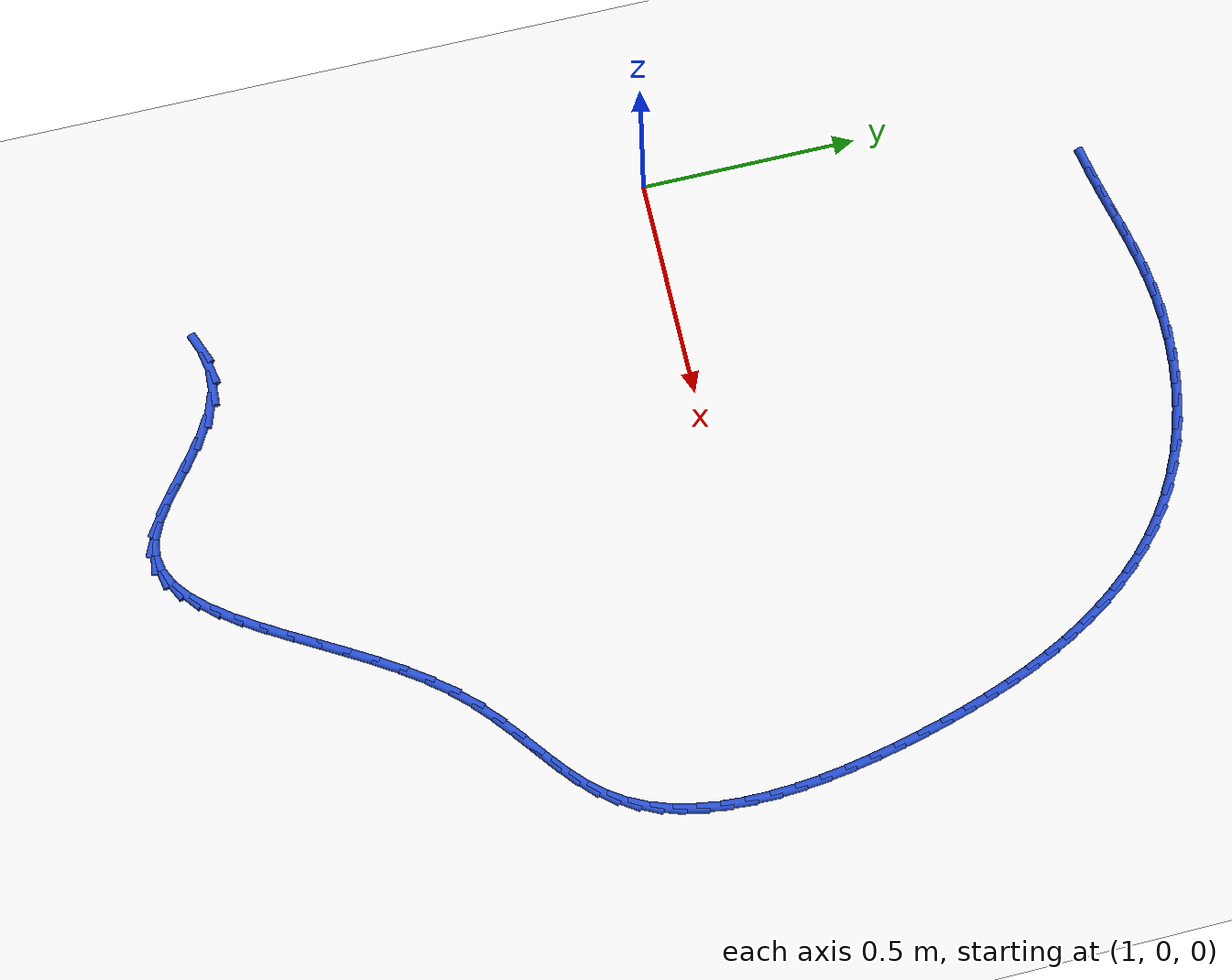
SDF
<sdf version="1.6">
 <world name="default">
  <model name="ground_plane">
   <static>1</static>
   <link name="link">
    <collision name="collision">
     <geometry><plane><normal>0 0 1</normal><size>100 100</size></plane></geometry>
     <surface><friction><ode><mu>100</mu><mu2>50</mu2></ode></friction></surface>
    </collision>
    <visual name="visual">
     <cast_shadows>0</cast_shadows>
     <geometry><plane><normal>0 0 1</normal><size>100 100</size></plane></geometry>
     <material>
      <script><uri>file://media/materials/scripts/gazebo.material</uri><name>Gazebo/WhiteGlow</name></script>
     </material>
    </visual>
   </link>
  </model>
  <model name="line">
   <link name="link_38">
    <pose>1.1827774399206277 1.0034736809453788 0.01 0 1.57 0.18481311294472316</pose>
    <collision name="collision">
     <geometry><cylinder><radius>0.01</radius><length>0.08</length></cylinder></geometry>
    </collision>
    <visual name="visual">
     <material>
      <script><name>Gazebo/Blue</name><uri>file://media/materials/scripts/gazebo.material</uri></script>
     </material>
     <geometry><cylinder><radius>0.01</radius><length>0.08</length></cylinder></geometry>
    </visual>
   </link>
   <link name="link_39">
    <pose>1.2326858865196098 1.0128038861425124 0.01 0 1.57 0.21310270665090636</pose>
    <collision name="collision">
     <geometry><cylinder><radius>0.01</radius><length>0.08</length></cylinder></geometry>
    </collision>
    <visual name="visual">
     <material>
      <script><name>Gazebo/Blue</name><uri>file://media/materials/scripts/gazebo.material</uri></script>
     </material>
     <geometry><cylinder><radius>0.01</radius><length>0.08</length></cylinder></geometry>
    </visual>
   </link>
   <link name="link_40">
    <pose>1.2824537283065853 1.023573062980368 0.01 0 1.57 0.22288784067027426</pose>
    <collision name="collision">
     <geometry><cylinder><radius>0.01</radius><length>0.08</length></cylinder></geometry>
    </collision>
    <visual name="visual">
     <material>
      <script><name>Gazebo/Blue</name><uri>file://media/materials/scripts/gazebo.material</uri></script>
     </material>
     <geometry><cylinder><radius>0.01</radius><length>0.08</length></cylinder></geometry>
    </visual>
   </link>
   <link name="link_41">
    <pose>1.3322438132164283 1.0348581668808963 0.01 0 1.57 0.21432103683781775</pose>
    <collision name="collision">
     <geometry><cylinder><radius>0.01</radius><length>0.08</length></cylinder></geometry>
    </collision>
    <visual name="visual">
     <material>
      <script><name>Gazebo/Blue</name><uri>file://media/materials/scripts/gazebo.material</uri></script>
     </material>
     <geometry><cylinder><radius>0.01</radius><length>0.08</length></cylinder></geometry>
    </visual>
   </link>
   <link name="link_42">
    <pose>1.382219005232821 1.0457359659310619 0.01 0 1.57 0.18749076358438954</pose>
    <collision name="collision">
     <geometry><cylinder><radius>0.01</radius><length>0.08</length></cylinder></geometry>
    </collision>
    <visual name="visual">
     <material>
      <script><name>Gazebo/Blue</name><uri>file://media/materials/scripts/gazebo.material</uri></script>
     </material>
     <geometry><cylinder><radius>0.01</radius><length>0.08</length></cylinder></geometry>
    </visual>
   </link>
   <link name="link_43">
    <pose>1.4325421683394453 1.0552832282178308 0.01 0 1.57 0.14250415444637676</pose>
    <collision name="collision">
     <geometry><cylinder><radius>0.01</radius><length>0.08</length></cylinder></geometry>
    </collision>
    <visual name="visual">
     <material>
      <script><name>Gazebo/Blue</name><uri>file://media/materials/scripts/gazebo.material</uri></script>
     </material>
     <geometry><cylinder><radius>0.01</radius><length>0.08</length></cylinder></geometry>
    </visual>
   </link>
   <link name="link_44">
    <pose>1.483376166519985 1.0625767218281688 0.01 0 1.57 0.0799822787415558</pose>
    <collision name="collision">
     <geometry><cylinder><radius>0.01</radius><length>0.08</length></cylinder></geometry>
    </collision>
    <visual name="visual">
     <material>
      <script><name>Gazebo/Blue</name><uri>file://media/materials/scripts/gazebo.material</uri></script>
     </material>
     <geometry><cylinder><radius>0.01</radius><length>0.08</length></cylinder></geometry>
    </visual>
   </link>
   <link name="link_45">
    <pose>1.5348772894511034 1.0667047052177914 0.01 0 1.57 0.008994929706711395</pose>
    <collision name="collision">
     <geometry><cylinder><radius>0.01</radius><length>0.08</length></cylinder></geometry>
    </collision>
    <visual name="visual">
     <material>
      <script><name>Gazebo/Blue</name><uri>file://media/materials/scripts/gazebo.material</uri></script>
     </material>
     <geometry><cylinder><radius>0.01</radius><length>0.08</length></cylinder></geometry>
    </visual>
   </link>
   <link name="link_46">
    <pose>1.5869627869559528 1.0671732232423923 0.01 0 1.57 -0.06033186394168268</pose>
    <collision name="collision">
     <geometry><cylinder><radius>0.01</radius><length>0.08</length></cylinder></geometry>
    </collision>
    <visual name="visual">
     <material>
      <script><name>Gazebo/Blue</name><uri>file://media/materials/scripts/gazebo.material</uri></script>
     </material>
     <geometry><cylinder><radius>0.01</radius><length>0.08</length></cylinder></geometry>
    </visual>
   </link>
   <link name="link_47">
    <pose>1.6392486291988257 1.0640148879481006 0.01 0 1.57 -0.12829653611474545</pose>
    <collision name="collision">
     <geometry><cylinder><radius>0.01</radius><length>0.08</length></cylinder></geometry>
    </collision>
    <visual name="visual">
     <material>
      <script><name>Gazebo/Blue</name><uri>file://media/materials/scripts/gazebo.material</uri></script>
     </material>
     <geometry><cylinder><radius>0.01</radius><length>0.08</length></cylinder></geometry>
    </visual>
   </link>
   <link name="link_48">
    <pose>1.691331554742499 1.05729592377431 0.01 0 1.57 -0.1958637644436021</pose>
    <collision name="collision">
     <geometry><cylinder><radius>0.01</radius><length>0.08</length></cylinder></geometry>
    </collision>
    <visual name="visual">
     <material>
      <script><name>Gazebo/Blue</name><uri>file://media/materials/scripts/gazebo.material</uri></script>
     </material>
     <geometry><cylinder><radius>0.01</radius><length>0.08</length></cylinder></geometry>
    </visual>
   </link>
   <link name="link_49">
    <pose>1.7428083021497507 1.0470825551604133 0.01 0 1.57 -0.263995774439734</pose>
    <collision name="collision">
     <geometry><cylinder><radius>0.01</radius><length>0.08</length></cylinder></geometry>
    </collision>
    <visual name="visual">
     <material>
      <script><name>Gazebo/Blue</name><uri>file://media/materials/scripts/gazebo.material</uri></script>
     </material>
     <geometry><cylinder><radius>0.01</radius><length>0.08</length></cylinder></geometry>
    </visual>
   </link>
   <link name="link_50">
    <pose>1.7932756099833596 1.0334410065458048 0.01 0 1.57 -0.33366408940121034</pose>
    <collision name="collision">
     <geometry><cylinder><radius>0.01</radius><length>0.08</length></cylinder></geometry>
    </collision>
    <visual name="visual">
     <material>
      <script><name>Gazebo/Blue</name><uri>file://media/materials/scripts/gazebo.material</uri></script>
     </material>
     <geometry><cylinder><radius>0.01</radius><length>0.08</length></cylinder></geometry>
    </visual>
   </link>
   <link name="link_51">
    <pose>1.8423302168061024 1.0164375023698775 0.01 0 1.57 -0.40585895835611846</pose>
    <collision name="collision">
     <geometry><cylinder><radius>0.01</radius><length>0.08</length></cylinder></geometry>
    </collision>
    <visual name="visual">
     <material>
      <script><name>Gazebo/Blue</name><uri>file://media/materials/scripts/gazebo.material</uri></script>
     </material>
     <geometry><cylinder><radius>0.01</radius><length>0.08</length></cylinder></geometry>
    </visual>
   </link>
   <link name="link_52">
    <pose>1.8895688611807573 0.9961382670720247 0.01 0 1.57 -0.4815915034889797</pose>
    <collision name="collision">
     <geometry><cylinder><radius>0.01</radius><length>0.08</length></cylinder></geometry>
    </collision>
    <visual name="visual">
     <material>
      <script><name>Gazebo/Blue</name><uri>file://media/materials/scripts/gazebo.material</uri></script>
     </material>
     <geometry><cylinder><radius>0.01</radius><length>0.08</length></cylinder></geometry>
    </visual>
   </link>
   <link name="link_53">
    <pose>1.9345882816701017 0.9726095250916403 0.01 0 1.57 -0.5616455412536447</pose>
    <collision name="collision">
     <geometry><cylinder><radius>0.01</radius><length>0.08</length></cylinder></geometry>
    </collision>
    <visual name="visual">
     <material>
      <script><name>Gazebo/Blue</name><uri>file://media/materials/scripts/gazebo.material</uri></script>
     </material>
     <geometry><cylinder><radius>0.01</radius><length>0.08</length></cylinder></geometry>
    </visual>
   </link>
   <link name="link_54">
    <pose>1.9770024676930367 0.9459206423492413 0.01 0 1.57 -0.6428294610637665</pose>
    <collision name="collision">
     <geometry><cylinder><radius>0.01</radius><length>0.08</length></cylinder></geometry>
    </collision>
    <visual name="visual">
     <material>
      <script><name>Gazebo/Blue</name><uri>file://media/materials/scripts/gazebo.material</uri></script>
     </material>
     <geometry><cylinder><radius>0.01</radius><length>0.08</length></cylinder></geometry>
    </visual>
   </link>
   <link name="link_55">
    <pose>2.0166980057784474 0.9161906262828136 0.01 0 1.57 -0.7213701250407571</pose>
    <collision name="collision">
     <geometry><cylinder><radius>0.01</radius><length>0.08</length></cylinder></geometry>
    </collision>
    <visual name="visual">
     <material>
      <script><name>Gazebo/Blue</name><uri>file://media/materials/scripts/gazebo.material</uri></script>
     </material>
     <geometry><cylinder><radius>0.01</radius><length>0.08</length></cylinder></geometry>
    </visual>
   </link>
   <link name="link_56">
    <pose>2.05377898596823 0.8835780929837168 0.01 0 1.57 -0.7962508761750118</pose>
    <collision name="collision">
     <geometry><cylinder><radius>0.01</radius><length>0.08</length></cylinder></geometry>
    </collision>
    <visual name="visual">
     <material>
      <script><name>Gazebo/Blue</name><uri>file://media/materials/scripts/gazebo.material</uri></script>
     </material>
     <geometry><cylinder><radius>0.01</radius><length>0.08</length></cylinder></geometry>
    </visual>
   </link>
   <link name="link_57">
    <pose>2.0883555540625554 0.8482427613320759 0.01 0 1.57 -0.8667826615746277</pose>
    <collision name="collision">
     <geometry><cylinder><radius>0.01</radius><length>0.08</length></cylinder></geometry>
    </collision>
    <visual name="visual">
     <material>
      <script><name>Gazebo/Blue</name><uri>file://media/materials/scripts/gazebo.material</uri></script>
     </material>
     <geometry><cylinder><radius>0.01</radius><length>0.08</length></cylinder></geometry>
    </visual>
   </link>
   <link name="link_58">
    <pose>2.120537855861596 0.8103443502080152 0.01 0 1.57 -0.932526662512129</pose>
    <collision name="collision">
     <geometry><cylinder><radius>0.01</radius><length>0.08</length></cylinder></geometry>
    </collision>
    <visual name="visual">
     <material>
      <script><name>Gazebo/Blue</name><uri>file://media/materials/scripts/gazebo.material</uri></script>
     </material>
     <geometry><cylinder><radius>0.01</radius><length>0.08</length></cylinder></geometry>
    </visual>
   </link>
   <link name="link_59">
    <pose>2.150436037165523 0.7700425784916601 0.01 0 1.57 -0.9932704989369299</pose>
    <collision name="collision">
     <geometry><cylinder><radius>0.01</radius><length>0.08</length></cylinder></geometry>
    </collision>
    <visual name="visual">
     <material>
      <script><name>Gazebo/Blue</name><uri>file://media/materials/scripts/gazebo.material</uri></script>
     </material>
     <geometry><cylinder><radius>0.01</radius><length>0.08</length></cylinder></geometry>
    </visual>
   </link>
   <link name="link_60">
    <pose>2.17816024377451 0.7274971650631356 0.01 0 1.57 -1.0489871485948696</pose>
    <collision name="collision">
     <geometry><cylinder><radius>0.01</radius><length>0.08</length></cylinder></geometry>
    </collision>
    <visual name="visual">
     <material>
      <script><name>Gazebo/Blue</name><uri>file://media/materials/scripts/gazebo.material</uri></script>
     </material>
     <geometry><cylinder><radius>0.01</radius><length>0.08</length></cylinder></geometry>
    </visual>
   </link>
   <link name="link_61">
    <pose>2.203820621488727 0.682867828802566 0.01 0 1.57 -1.0997879977297422</pose>
    <collision name="collision">
     <geometry><cylinder><radius>0.01</radius><length>0.08</length></cylinder></geometry>
    </collision>
    <visual name="visual">
     <material>
      <script><name>Gazebo/Blue</name><uri>file://media/materials/scripts/gazebo.material</uri></script>
     </material>
     <geometry><cylinder><radius>0.01</radius><length>0.08</length></cylinder></geometry>
    </visual>
   </link>
   <link name="link_62">
    <pose>2.227527316108347 0.6363142885900762 0.01 0 1.57 -1.1458782137169803</pose>
    <collision name="collision">
     <geometry><cylinder><radius>0.01</radius><length>0.08</length></cylinder></geometry>
    </collision>
    <visual name="visual">
     <material>
      <script><name>Gazebo/Blue</name><uri>file://media/materials/scripts/gazebo.material</uri></script>
     </material>
     <geometry><cylinder><radius>0.01</radius><length>0.08</length></cylinder></geometry>
    </visual>
   </link>
   <link name="link_63">
    <pose>2.249390473433541 0.5879962633057915 0.01 0 1.57 -1.1875189334384053</pose>
    <collision name="collision">
     <geometry><cylinder><radius>0.01</radius><length>0.08</length></cylinder></geometry>
    </collision>
    <visual name="visual">
     <material>
      <script><name>Gazebo/Blue</name><uri>file://media/materials/scripts/gazebo.material</uri></script>
     </material>
     <geometry><cylinder><radius>0.01</radius><length>0.08</length></cylinder></geometry>
    </visual>
   </link>
   <link name="link_64">
    <pose>2.2695202392644815 0.5380734718298367 0.01 0 1.57 -1.2249978007042315</pose>
    <collision name="collision">
     <geometry><cylinder><radius>0.01</radius><length>0.08</length></cylinder></geometry>
    </collision>
    <visual name="visual">
     <material>
      <script><name>Gazebo/Blue</name><uri>file://media/materials/scripts/gazebo.material</uri></script>
     </material>
     <geometry><cylinder><radius>0.01</radius><length>0.08</length></cylinder></geometry>
    </visual>
   </link>
   <link name="link_65">
    <pose>2.2880267594013404 0.4867056330423363 0.01 0 1.57 -1.2586075190022146</pose>
    <collision name="collision">
     <geometry><cylinder><radius>0.01</radius><length>0.08</length></cylinder></geometry>
    </collision>
    <visual name="visual">
     <material>
      <script><name>Gazebo/Blue</name><uri>file://media/materials/scripts/gazebo.material</uri></script>
     </material>
     <geometry><cylinder><radius>0.01</radius><length>0.08</length></cylinder></geometry>
    </visual>
   </link>
   <link name="link_66">
    <pose>2.305020179644288 0.43405246582341517 0.01 0 1.57 -1.2886311709031752</pose>
    <collision name="collision">
     <geometry><cylinder><radius>0.01</radius><length>0.08</length></cylinder></geometry>
    </collision>
    <visual name="visual">
     <material>
      <script><name>Gazebo/Blue</name><uri>file://media/materials/scripts/gazebo.material</uri></script>
     </material>
     <geometry><cylinder><radius>0.01</radius><length>0.08</length></cylinder></geometry>
    </visual>
   </link>
   <link name="link_67">
    <pose>2.3206106457934994 0.380273689053198 0.01 0 1.57 -1.3153327834618325</pose>
    <collision name="collision">
     <geometry><cylinder><radius>0.01</radius><length>0.08</length></cylinder></geometry>
    </collision>
    <visual name="visual">
     <material>
      <script><name>Gazebo/Blue</name><uri>file://media/materials/scripts/gazebo.material</uri></script>
     </material>
     <geometry><cylinder><radius>0.01</radius><length>0.08</length></cylinder></geometry>
    </visual>
   </link>
   <link name="link_68">
    <pose>2.3349083036491445 0.3255290216118105 0.01 0 1.57 -1.3389587395944422</pose>
    <collision name="collision">
     <geometry><cylinder><radius>0.01</radius><length>0.08</length></cylinder></geometry>
    </collision>
    <visual name="visual">
     <material>
      <script><name>Gazebo/Blue</name><uri>file://media/materials/scripts/gazebo.material</uri></script>
     </material>
     <geometry><cylinder><radius>0.01</radius><length>0.08</length></cylinder></geometry>
    </visual>
   </link>
   <link name="link_69">
    <pose>2.348022844187488 0.2699783604465285 0.01 0 1.57 -1.3614607573363913</pose>
    <collision name="collision">
     <geometry><cylinder><radius>0.01</radius><length>0.08</length></cylinder></geometry>
    </collision>
    <visual name="visual">
     <material>
      <script><name>Gazebo/Blue</name><uri>file://media/materials/scripts/gazebo.material</uri></script>
     </material>
     <geometry><cylinder><radius>0.01</radius><length>0.08</length></cylinder></geometry>
    </visual>
   </link>
   <link name="link_70">
    <pose>2.3599524545961432 0.21382525711860975 0.01 0 1.57 -1.3871331629922408</pose>
    <collision name="collision">
     <geometry><cylinder><radius>0.01</radius><length>0.08</length></cylinder></geometry>
    </collision>
    <visual name="visual">
     <material>
      <script><name>Gazebo/Blue</name><uri>file://media/materials/scripts/gazebo.material</uri></script>
     </material>
     <geometry><cylinder><radius>0.01</radius><length>0.08</length></cylinder></geometry>
    </visual>
   </link>
   <link name="link_71">
    <pose>2.370438693525881 0.15737373528848858 0.01 0 1.57 -1.4169937483911992</pose>
    <collision name="collision">
     <geometry><cylinder><radius>0.01</radius><length>0.08</length></cylinder></geometry>
    </collision>
    <visual name="visual">
     <material>
      <script><name>Gazebo/Blue</name><uri>file://media/materials/scripts/gazebo.material</uri></script>
     </material>
     <geometry><cylinder><radius>0.01</radius><length>0.08</length></cylinder></geometry>
    </visual>
   </link>
   <link name="link_72">
    <pose>2.379187146172139 0.1009419025085031 0.01 0 1.57 -1.4516315973730438</pose>
    <collision name="collision">
     <geometry><cylinder><radius>0.01</radius><length>0.08</length></cylinder></geometry>
    </collision>
    <visual name="visual">
     <material>
      <script><name>Gazebo/Blue</name><uri>file://media/materials/scripts/gazebo.material</uri></script>
     </material>
     <geometry><cylinder><radius>0.01</radius><length>0.08</length></cylinder></geometry>
    </visual>
   </link>
   <link name="link_73">
    <pose>2.385903397730353 0.04484786633099019 0.01 0 1.57 -1.4917803839875574</pose>
    <collision name="collision">
     <geometry><cylinder><radius>0.01</radius><length>0.08</length></cylinder></geometry>
    </collision>
    <visual name="visual">
     <material>
      <script><name>Gazebo/Blue</name><uri>file://media/materials/scripts/gazebo.material</uri></script>
     </material>
     <geometry><cylinder><radius>0.01</radius><length>0.08</length></cylinder></geometry>
    </visual>
   </link>
   <link name="link_74">
    <pose>2.390293033395962 -0.010590265691712937 0.01 0 1.57 -1.5383348880531529</pose>
    <collision name="collision">
     <geometry><cylinder><radius>0.01</radius><length>0.08</length></cylinder></geometry>
    </collision>
    <visual name="visual">
     <material>
      <script><name>Gazebo/Blue</name><uri>file://media/materials/scripts/gazebo.material</uri></script>
     </material>
     <geometry><cylinder><radius>0.01</radius><length>0.08</length></cylinder></geometry>
    </visual>
   </link>
   <link name="link_75">
    <pose>2.392061638364404 -0.06505438600726891 0.01 0 1.57 1.5492311661228946</pose>
    <collision name="collision">
     <geometry><cylinder><radius>0.01</radius><length>0.08</length></cylinder></geometry>
    </collision>
    <visual name="visual">
     <material>
      <script><name>Gazebo/Blue</name><uri>file://media/materials/scripts/gazebo.material</uri></script>
     </material>
     <geometry><cylinder><radius>0.01</radius><length>0.08</length></cylinder></geometry>
    </visual>
   </link>
   <link name="link_76">
    <pose>2.3909147978311163 -0.11822638706334088 0.01 0 1.57 1.48650176826832</pose>
    <collision name="collision">
     <geometry><cylinder><radius>0.01</radius><length>0.08</length></cylinder></geometry>
    </collision>
    <visual name="visual">
     <material>
      <script><name>Gazebo/Blue</name><uri>file://media/materials/scripts/gazebo.material</uri></script>
     </material>
     <geometry><cylinder><radius>0.01</radius><length>0.08</length></cylinder></geometry>
    </visual>
   </link>
   <link name="link_77">
    <pose>2.386558096991536 -0.1697881613075911 0.01 0 1.57 1.4137204018970764</pose>
    <collision name="collision">
     <geometry><cylinder><radius>0.01</radius><length>0.08</length></cylinder></geometry>
    </collision>
    <visual name="visual">
     <material>
      <script><name>Gazebo/Blue</name><uri>file://media/materials/scripts/gazebo.material</uri></script>
     </material>
     <geometry><cylinder><radius>0.01</radius><length>0.08</length></cylinder></geometry>
    </visual>
   </link>
   <link name="link_78">
    <pose>2.378697121041102 -0.2194216011876815 0.01 0 1.57 1.3295368613279976</pose>
    <collision name="collision">
     <geometry><cylinder><radius>0.01</radius><length>0.08</length></cylinder></geometry>
    </collision>
    <visual name="visual">
     <material>
      <script><name>Gazebo/Blue</name><uri>file://media/materials/scripts/gazebo.material</uri></script>
     </material>
     <geometry><cylinder><radius>0.01</radius><length>0.08</length></cylinder></geometry>
    </visual>
   </link>
   <link name="link_79">
    <pose>2.367037455175251 -0.2668085991512764 0.01 0 1.57 1.2328318999270813</pose>
    <collision name="collision">
     <geometry><cylinder><radius>0.01</radius><length>0.08</length></cylinder></geometry>
    </collision>
    <visual name="visual">
     <material>
      <script><name>Gazebo/Blue</name><uri>file://media/materials/scripts/gazebo.material</uri></script>
     </material>
     <geometry><cylinder><radius>0.01</radius><length>0.08</length></cylinder></geometry>
    </visual>
   </link>
   <link name="link_80">
    <pose>2.3512846845894213 -0.31163104764603705 0.01 0 1.57 1.123098271538699</pose>
    <collision name="collision">
     <geometry><cylinder><radius>0.01</radius><length>0.08</length></cylinder></geometry>
    </collision>
    <visual name="visual">
     <material>
      <script><name>Gazebo/Blue</name><uri>file://media/materials/scripts/gazebo.material</uri></script>
     </material>
     <geometry><cylinder><radius>0.01</radius><length>0.08</length></cylinder></geometry>
    </visual>
   </link>
   <link name="link_81">
    <pose>2.3311443944790504 -0.3535708391196275 0.01 0 1.57 1.000947719923357</pose>
    <collision name="collision">
     <geometry><cylinder><radius>0.01</radius><length>0.08</length></cylinder></geometry>
    </collision>
    <visual name="visual">
     <material>
      <script><name>Gazebo/Blue</name><uri>file://media/materials/scripts/gazebo.material</uri></script>
     </material>
     <geometry><cylinder><radius>0.01</radius><length>0.08</length></cylinder></geometry>
    </visual>
   </link>
   <link name="link_82">
    <pose>2.306322170039575 -0.3923098660197097 0.01 0 1.57 0.8753505238559841</pose>
    <collision name="collision">
     <geometry><cylinder><radius>0.01</radius><length>0.08</length></cylinder></geometry>
    </collision>
    <visual name="visual">
     <material>
      <script><name>Gazebo/Blue</name><uri>file://media/materials/scripts/gazebo.material</uri></script>
     </material>
     <geometry><cylinder><radius>0.01</radius><length>0.08</length></cylinder></geometry>
    </visual>
   </link>
   <link name="link_83">
    <pose>2.2767246121263267 -0.42777588265710836 0.01 0 1.57 0.7777896400408832</pose>
    <collision name="collision">
     <geometry><cylinder><radius>0.01</radius><length>0.08</length></cylinder></geometry>
    </collision>
    <visual name="visual">
     <material>
      <script><name>Gazebo/Blue</name><uri>file://media/materials/scripts/gazebo.material</uri></script>
     </material>
     <geometry><cylinder><radius>0.01</radius><length>0.08</length></cylinder></geometry>
    </visual>
   </link>
   <link name="link_84">
    <pose>2.243084865384659 -0.4609075874467572 0.01 0 1.57 0.7165369078485566</pose>
    <collision name="collision">
     <geometry><cylinder><radius>0.01</radius><length>0.08</length></cylinder></geometry>
    </collision>
    <visual name="visual">
     <material>
      <script><name>Gazebo/Blue</name><uri>file://media/materials/scripts/gazebo.material</uri></script>
     </material>
     <geometry><cylinder><radius>0.01</radius><length>0.08</length></cylinder></geometry>
    </visual>
   </link>
   <link name="link_85">
    <pose>2.206348486946992 -0.49290348010392565 0.01 0 1.57 0.6894393211643342</pose>
    <collision name="collision">
     <geometry><cylinder><radius>0.01</radius><length>0.08</length></cylinder></geometry>
    </collision>
    <visual name="visual">
     <material>
      <script><name>Gazebo/Blue</name><uri>file://media/materials/scripts/gazebo.material</uri></script>
     </material>
     <geometry><cylinder><radius>0.01</radius><length>0.08</length></cylinder></geometry>
    </visual>
   </link>
   <link name="link_86">
    <pose>2.167461034106219 -0.5249620605401646 0.01 0 1.57 0.6933966779392304</pose>
    <collision name="collision">
     <geometry><cylinder><radius>0.01</radius><length>0.08</length></cylinder></geometry>
    </collision>
    <visual name="visual">
     <material>
      <script><name>Gazebo/Blue</name><uri>file://media/materials/scripts/gazebo.material</uri></script>
     </material>
     <geometry><cylinder><radius>0.01</radius><length>0.08</length></cylinder></geometry>
    </visual>
   </link>
   <link name="link_87">
    <pose>2.1273680641552377 -0.5582818286670232 0.01 0 1.57 0.7253976206110584</pose>
    <collision name="collision">
     <geometry><cylinder><radius>0.01</radius><length>0.08</length></cylinder></geometry>
    </collision>
    <visual name="visual">
     <material>
      <script><name>Gazebo/Blue</name><uri>file://media/materials/scripts/gazebo.material</uri></script>
     </material>
     <geometry><cylinder><radius>0.01</radius><length>0.08</length></cylinder></geometry>
    </visual>
   </link>
   <link name="link_88">
    <pose>2.0870151343869434 -0.5940612843960512 0.01 0 1.57 0.7824945735420734</pose>
    <collision name="collision">
     <geometry><cylinder><radius>0.01</radius><length>0.08</length></cylinder></geometry>
    </collision>
    <visual name="visual">
     <material>
      <script><name>Gazebo/Blue</name><uri>file://media/materials/scripts/gazebo.material</uri></script>
     </material>
     <geometry><cylinder><radius>0.01</radius><length>0.08</length></cylinder></geometry>
    </visual>
   </link>
   <link name="link_89">
    <pose>2.0473478020942304 -0.6334989276387993 0.01 0 1.57 0.8606888353333896</pose>
    <collision name="collision">
     <geometry><cylinder><radius>0.01</radius><length>0.08</length></cylinder></geometry>
    </collision>
    <visual name="visual">
     <material>
      <script><name>Gazebo/Blue</name><uri>file://media/materials/scripts/gazebo.material</uri></script>
     </material>
     <geometry><cylinder><radius>0.01</radius><length>0.08</length></cylinder></geometry>
    </visual>
   </link>
   <link name="link_90">
    <pose>2.00929531783285 -0.677760640249316 0.01 0 1.57 0.9381653350756295</pose>
    <collision name="collision">
     <geometry><cylinder><radius>0.01</radius><length>0.08</length></cylinder></geometry>
    </collision>
    <visual name="visual">
     <material>
      <script><name>Gazebo/Blue</name><uri>file://media/materials/scripts/gazebo.material</uri></script>
     </material>
     <geometry><cylinder><radius>0.01</radius><length>0.08</length></cylinder></geometry>
    </visual>
   </link>
   <link name="link_91">
    <pose>1.9732461970164994 -0.7269306818172112 0.01 0 1.57 0.9950443835323</pose>
    <collision name="collision">
     <geometry><cylinder><radius>0.01</radius><length>0.08</length></cylinder></geometry>
    </collision>
    <visual name="visual">
     <material>
      <script><name>Gazebo/Blue</name><uri>file://media/materials/scripts/gazebo.material</uri></script>
     </material>
     <geometry><cylinder><radius>0.01</radius><length>0.08</length></cylinder></geometry>
    </visual>
   </link>
   <link name="link_92">
    <pose>1.9389361272943688 -0.7797874729177364 0.01 0 1.57 1.0340062544210955</pose>
    <collision name="collision">
     <geometry><cylinder><radius>0.01</radius><length>0.08</length></cylinder></geometry>
    </collision>
    <visual name="visual">
     <material>
      <script><name>Gazebo/Blue</name><uri>file://media/materials/scripts/gazebo.material</uri></script>
     </material>
     <geometry><cylinder><radius>0.01</radius><length>0.08</length></cylinder></geometry>
    </visual>
   </link>
   <link name="link_93">
    <pose>1.9060618213569442 -0.8350314732543266 0.01 0 1.57 1.057661912581649</pose>
    <collision name="collision">
     <geometry><cylinder><radius>0.01</radius><length>0.08</length></cylinder></geometry>
    </collision>
    <visual name="visual">
     <material>
      <script><name>Gazebo/Blue</name><uri>file://media/materials/scripts/gazebo.material</uri></script>
     </material>
     <geometry><cylinder><radius>0.01</radius><length>0.08</length></cylinder></geometry>
    </visual>
   </link>
   <link name="link_94">
    <pose>1.8743199918947075 -0.8913631425304204 0.01 0 1.57 1.0673137515920919</pose>
    <collision name="collision">
     <geometry><cylinder><radius>0.01</radius><length>0.08</length></cylinder></geometry>
    </collision>
    <visual name="visual">
     <material>
      <script><name>Gazebo/Blue</name><uri>file://media/materials/scripts/gazebo.material</uri></script>
     </material>
     <geometry><cylinder><radius>0.01</radius><length>0.08</length></cylinder></geometry>
    </visual>
   </link>
   <link name="link_95">
    <pose>1.8434073515981446 -0.9474829404494541 0.01 0 1.57 1.0630159630352678</pose>
    <collision name="collision">
     <geometry><cylinder><radius>0.01</radius><length>0.08</length></cylinder></geometry>
    </collision>
    <visual name="visual">
     <material>
      <script><name>Gazebo/Blue</name><uri>file://media/materials/scripts/gazebo.material</uri></script>
     </material>
     <geometry><cylinder><radius>0.01</radius><length>0.08</length></cylinder></geometry>
    </visual>
   </link>
   <link name="link_96">
    <pose>1.8130206131577398 -1.0020913267148637 0.01 0 1.57 1.0434574855161765</pose>
    <collision name="collision">
     <geometry><cylinder><radius>0.01</radius><length>0.08</length></cylinder></geometry>
    </collision>
    <visual name="visual">
     <material>
      <script><name>Gazebo/Blue</name><uri>file://media/materials/scripts/gazebo.material</uri></script>
     </material>
     <geometry><cylinder><radius>0.01</radius><length>0.08</length></cylinder></geometry>
    </visual>
   </link>
   <link name="link_97">
    <pose>1.7828564892639758 -1.0538887610300873 0.01 0 1.57 1.005582627347539</pose>
    <collision name="collision">
     <geometry><cylinder><radius>0.01</radius><length>0.08</length></cylinder></geometry>
    </collision>
    <visual name="visual">
     <material>
      <script><name>Gazebo/Blue</name><uri>file://media/materials/scripts/gazebo.material</uri></script>
     </material>
     <geometry><cylinder><radius>0.01</radius><length>0.08</length></cylinder></geometry>
    </visual>
   </link>
   <link name="link_98">
    <pose>1.752611692607337 -1.101575703098561 0.01 0 1.57 0.9438293524894734</pose>
    <collision name="collision">
     <geometry><cylinder><radius>0.01</radius><length>0.08</length></cylinder></geometry>
    </collision>
    <visual name="visual">
     <material>
      <script><name>Gazebo/Blue</name><uri>file://media/materials/scripts/gazebo.material</uri></script>
     </material>
     <geometry><cylinder><radius>0.01</radius><length>0.08</length></cylinder></geometry>
    </visual>
   </link>
   <link name="link_99">
    <pose>1.7219829358783076 -1.1438526126237227 0.01 0 1.57 0.848876165577958</pose>
    <collision name="collision">
     <geometry><cylinder><radius>0.01</radius><length>0.08</length></cylinder></geometry>
    </collision>
    <visual name="visual">
     <material>
      <script><name>Gazebo/Blue</name><uri>file://media/materials/scripts/gazebo.material</uri></script>
     </material>
     <geometry><cylinder><radius>0.01</radius><length>0.08</length></cylinder></geometry>
    </visual>
   </link>
   <link name="link_100">
    <pose>1.6906669317673715 -1.1794199493090083 0.01 0 1.57 0.706246507520815</pose>
    <collision name="collision">
     <geometry><cylinder><radius>0.01</radius><length>0.08</length></cylinder></geometry>
    </collision>
    <visual name="visual">
     <material>
      <script><name>Gazebo/Blue</name><uri>file://media/materials/scripts/gazebo.material</uri></script>
     </material>
     <geometry><cylinder><radius>0.01</radius><length>0.08</length></cylinder></geometry>
    </visual>
   </link>
   <link name="link_101">
    <pose>1.658360392965013 -1.2069781728578548 0.01 0 1.57 0.4975581803598389</pose>
    <collision name="collision">
     <geometry><cylinder><radius>0.01</radius><length>0.08</length></cylinder></geometry>
    </collision>
    <visual name="visual">
     <material>
      <script><name>Gazebo/Blue</name><uri>file://media/materials/scripts/gazebo.material</uri></script>
     </material>
     <geometry><cylinder><radius>0.01</radius><length>0.08</length></cylinder></geometry>
    </visual>
   </link>
   <link name="link_102">
    <pose>1.624760032161716 -1.2252277429737 0.01 0 1.57 0.21378266051317382</pose>
    <collision name="collision">
     <geometry><cylinder><radius>0.01</radius><length>0.08</length></cylinder></geometry>
    </collision>
    <visual name="visual">
     <material>
      <script><name>Gazebo/Blue</name><uri>file://media/materials/scripts/gazebo.material</uri></script>
     </material>
     <geometry><cylinder><radius>0.01</radius><length>0.08</length></cylinder></geometry>
    </visual>
   </link>
   <link name="link_103">
    <pose>1.5895625620479645 -1.2328691193599801 0.01 0 1.57 -0.11449976604876651</pose>
    <collision name="collision">
     <geometry><cylinder><radius>0.01</radius><length>0.08</length></cylinder></geometry>
    </collision>
    <visual name="visual">
     <material>
      <script><name>Gazebo/Blue</name><uri>file://media/materials/scripts/gazebo.material</uri></script>
     </material>
     <geometry><cylinder><radius>0.01</radius><length>0.08</length></cylinder></geometry>
    </visual>
   </link>
   <link name="link_104">
    <pose>1.5524646953142434 -1.2286027617201323 0.01 0 1.57 -0.4054460944475092</pose>
    <collision name="collision">
     <geometry><cylinder><radius>0.01</radius><length>0.08</length></cylinder></geometry>
    </collision>
    <visual name="visual">
     <material>
      <script><name>Gazebo/Blue</name><uri>file://media/materials/scripts/gazebo.material</uri></script>
     </material>
     <geometry><cylinder><radius>0.01</radius><length>0.08</length></cylinder></geometry>
    </visual>
   </link>
   <link name="link_105">
    <pose>1.5132301495111629 -1.2117622076915195 0.01 0 1.57 -0.572648565934064</pose>
    <collision name="collision">
     <geometry><cylinder><radius>0.01</radius><length>0.08</length></cylinder></geometry>
    </collision>
    <visual name="visual">
     <material>
      <script><name>Gazebo/Blue</name><uri>file://media/materials/scripts/gazebo.material</uri></script>
     </material>
     <geometry><cylinder><radius>0.01</radius><length>0.08</length></cylinder></geometry>
    </visual>
   </link>
   <link name="link_106">
    <pose>1.4719925358927943 -1.185175839033457 0.01 0 1.57 -0.6445325637182056</pose>
    <collision name="collision">
     <geometry><cylinder><radius>0.01</radius><length>0.08</length></cylinder></geometry>
    </collision>
    <visual name="visual">
     <material>
      <script><name>Gazebo/Blue</name><uri>file://media/materials/scripts/gazebo.material</uri></script>
     </material>
     <geometry><cylinder><radius>0.01</radius><length>0.08</length></cylinder></geometry>
    </visual>
   </link>
   <link name="link_107">
    <pose>1.429012408234408 -1.1528714207872637 0.01 0 1.57 -0.6527514176786935</pose>
    <collision name="collision">
     <geometry><cylinder><radius>0.01</radius><length>0.08</length></cylinder></geometry>
    </collision>
    <visual name="visual">
     <material>
      <script><name>Gazebo/Blue</name><uri>file://media/materials/scripts/gazebo.material</uri></script>
     </material>
     <geometry><cylinder><radius>0.01</radius><length>0.08</length></cylinder></geometry>
    </visual>
   </link>
   <link name="link_108">
    <pose>1.3845504344443083 -1.118877796350417 0.01 0 1.57 -0.6059468929848127</pose>
    <collision name="collision">
     <geometry><cylinder><radius>0.01</radius><length>0.08</length></cylinder></geometry>
    </collision>
    <visual name="visual">
     <material>
      <script><name>Gazebo/Blue</name><uri>file://media/materials/scripts/gazebo.material</uri></script>
     </material>
     <geometry><cylinder><radius>0.01</radius><length>0.08</length></cylinder></geometry>
    </visual>
   </link>
   <link name="link_109">
    <pose>1.3388672824307981 -1.0872238091203956 0.01 0 1.57 -0.49675734965146573</pose>
    <collision name="collision">
     <geometry><cylinder><radius>0.01</radius><length>0.08</length></cylinder></geometry>
    </collision>
    <visual name="visual">
     <material>
      <script><name>Gazebo/Blue</name><uri>file://media/materials/scripts/gazebo.material</uri></script>
     </material>
     <geometry><cylinder><radius>0.01</radius><length>0.08</length></cylinder></geometry>
    </visual>
   </link>
   <link name="link_110">
    <pose>1.2922236201021806 -1.061938302494677 0.01 0 1.57 -0.3046799522837045</pose>
    <collision name="collision">
     <geometry><cylinder><radius>0.01</radius><length>0.08</length></cylinder></geometry>
    </collision>
    <visual name="visual">
     <material>
      <script><name>Gazebo/Blue</name><uri>file://media/materials/scripts/gazebo.material</uri></script>
     </material>
     <geometry><cylinder><radius>0.01</radius><length>0.08</length></cylinder></geometry>
    </visual>
   </link>
   <link name="link_111">
    <pose>1.2448801153667581 -1.0470501198707385 0.01 0 1.57 -0.02557022022449365</pose>
    <collision name="collision">
     <geometry><cylinder><radius>0.01</radius><length>0.08</length></cylinder></geometry>
    </collision>
    <visual name="visual">
     <material>
      <script><name>Gazebo/Blue</name><uri>file://media/materials/scripts/gazebo.material</uri></script>
     </material>
     <geometry><cylinder><radius>0.01</radius><length>0.08</length></cylinder></geometry>
    </visual>
   </link>
   <link name="link_112">
    <pose>1.1970926312298258 -1.045827916992291 0.01 0 1.57 0.22869162683971206</pose>
    <collision name="collision">
     <geometry><cylinder><radius>0.01</radius><length>0.08</length></cylinder></geometry>
    </collision>
    <visual name="visual">
     <material>
      <script><name>Gazebo/Blue</name><uri>file://media/materials/scripts/gazebo.material</uri></script>
     </material>
     <geometry><cylinder><radius>0.01</radius><length>0.08</length></cylinder></geometry>
    </visual>
   </link>
   <link name="link_113">
    <pose>1.1490883425350693 -1.0570015719794068 0.01 0 1.57 0.4057482098753398</pose>
    <collision name="collision">
     <geometry><cylinder><radius>0.01</radius><length>0.08</length></cylinder></geometry>
    </collision>
    <visual name="visual">
     <material>
      <script><name>Gazebo/Blue</name><uri>file://media/materials/scripts/gazebo.material</uri></script>
     </material>
     <geometry><cylinder><radius>0.01</radius><length>0.08</length></cylinder></geometry>
    </visual>
   </link>
  </model>
 </world>
</sdf>
